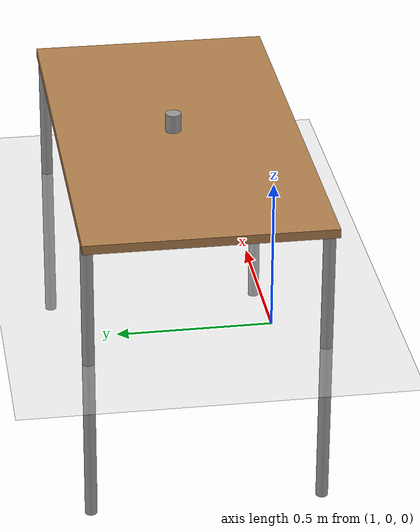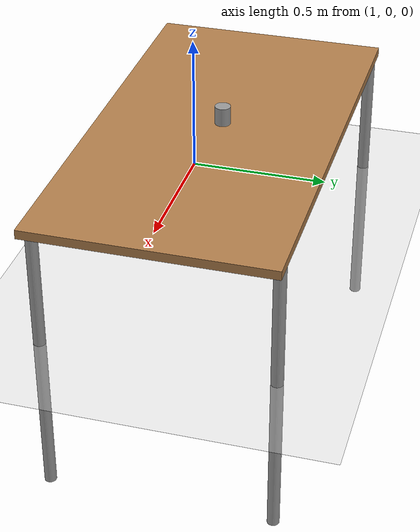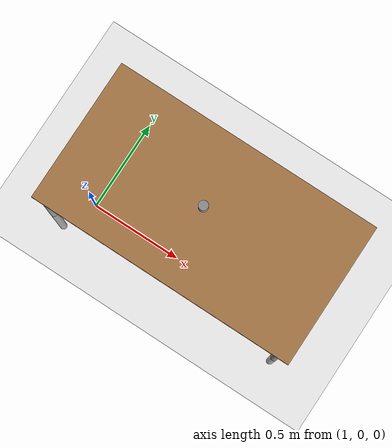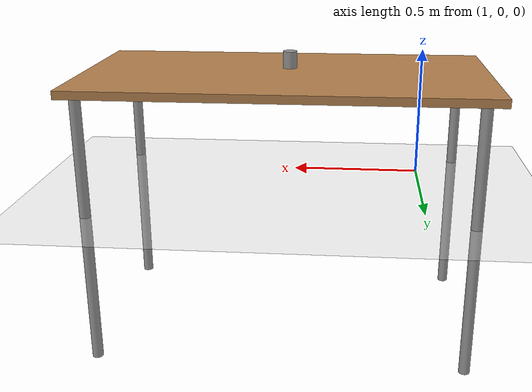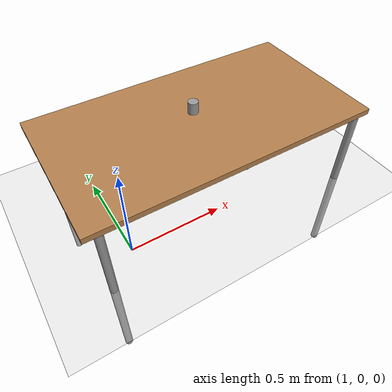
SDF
<sdf version="1.6">
 <world name="default">
  <light name="sun" type="directional">
   <pose>0 0 10 0 -0 0</pose>
   <diffuse>0.8 0.8 0.8 1</diffuse>
   <specular>0.2 0.2 0.2 1</specular>
   <attenuation>
    <range>1000</range>
    <constant>0.9</constant>
    <linear>0.01</linear>
    <quadratic>0.001</quadratic>
   </attenuation>
   <direction>-0.5 0.1 -0.9</direction>
  </light>
  <physics default="true" type="ode">
   <ode><constraints><contact_surface_layer>0.001</contact_surface_layer></constraints></ode>
  </physics>
  <model name="ground_plane">
   <static>1</static>
   <link name="link">
    <collision name="collision">
     <geometry><plane><normal>0 0 1</normal><size>100 100</size></plane></geometry>
     <surface><friction><ode><mu>100</mu><mu2>50</mu2></ode></friction></surface>
    </collision>
    <visual name="visual">
     <cast_shadows>0</cast_shadows>
     <geometry><plane><normal>0 0 1</normal><size>100 100</size></plane></geometry>
     <material>
      <script><uri>file://media/materials/scripts/gazebo.material</uri><name>Gazebo/Grey</name></script>
     </material>
    </visual>
   </link>
  </model>
  <gravity>0 0 -9.8</gravity>
  <magnetic_field>6e-06 2.3e-05 -4.2e-05</magnetic_field>
  <atmosphere type="adiabatic"/>
  <physics name="default_physics" default="0" type="ode">
   <max_step_size>0.001</max_step_size>
   <real_time_factor>1</real_time_factor>
   <real_time_update_rate>1000</real_time_update_rate>
  </physics>
  <scene><ambient>0.4 0.4 0.4 1</ambient><background>0.7 0.7 0.7 1</background><shadows>1</shadows></scene>
  <spherical_coordinates>
   <surface_model>EARTH_WGS84</surface_model>
   <latitude_deg>0</latitude_deg>
   <longitude_deg>0</longitude_deg>
   <elevation>0</elevation>
   <heading_deg>0</heading_deg>
  </spherical_coordinates>
  <model name="table">
   <static>1</static>
   <link name="link">
    <collision name="surface">
     <pose>0 0 1 0 -0 0</pose>
     <geometry><box><size>1.5 0.8 0.03</size></box></geometry>
     <surface><friction><ode><mu>0.6</mu><mu2>0.6</mu2></ode></friction></surface>
    </collision>
    <visual name="visual1">
     <pose>0 0 1 0 -0 0</pose>
     <geometry><box><size>1.5 0.8 0.03</size></box></geometry>
     <material>
      <script><uri>file://media/materials/scripts/gazebo.material</uri><name>Gazebo/Wood</name></script>
     </material>
    </visual>
    <collision name="front_left_leg">
     <pose>0.68 0.38 0.5 0 -0 0</pose>
     <geometry><cylinder><radius>0.02</radius><length>1</length></cylinder></geometry>
    </collision>
    <visual name="front_left_leg">
     <pose>0.68 0.38 0.5 0 -0 0</pose>
     <geometry><cylinder><radius>0.02</radius><length>1</length></cylinder></geometry>
     <material>
      <script><uri>file://media/materials/scripts/gazebo.material</uri><name>Gazebo/Grey</name></script>
     </material>
    </visual>
    <collision name="front_right_leg">
     <pose>0.68 -0.38 0.5 0 -0 0</pose>
     <geometry><cylinder><radius>0.02</radius><length>1</length></cylinder></geometry>
    </collision>
    <visual name="front_right_leg">
     <pose>0.68 -0.38 0.5 0 -0 0</pose>
     <geometry><cylinder><radius>0.02</radius><length>1</length></cylinder></geometry>
     <material>
      <script><uri>file://media/materials/scripts/gazebo.material</uri><name>Gazebo/Grey</name></script>
     </material>
    </visual>
    <collision name="back_right_leg">
     <pose>-0.68 -0.38 0.5 0 -0 0</pose>
     <geometry><cylinder><radius>0.02</radius><length>1</length></cylinder></geometry>
    </collision>
    <visual name="back_right_leg">
     <pose>-0.68 -0.38 0.5 0 -0 0</pose>
     <geometry><cylinder><radius>0.02</radius><length>1</length></cylinder></geometry>
     <material>
      <script><uri>file://media/materials/scripts/gazebo.material</uri><name>Gazebo/Grey</name></script>
     </material>
    </visual>
    <collision name="back_left_leg">
     <pose>-0.68 0.38 0.5 0 -0 0</pose>
     <geometry><cylinder><radius>0.02</radius><length>1</length></cylinder></geometry>
    </collision>
    <visual name="back_left_leg">
     <pose>-0.68 0.38 0.5 0 -0 0</pose>
     <geometry><cylinder><radius>0.02</radius><length>1</length></cylinder></geometry>
     <material>
      <script><uri>file://media/materials/scripts/gazebo.material</uri><name>Gazebo/Grey</name></script>
     </material>
    </visual>
   </link>
   <pose>1.51773 0.230266 -0.563206 0 -0 0</pose>
  </model>
  <model name="unit_cylinder">
   <pose>1.50233 0.248338 0.5 0 -0 0</pose>
   <link name="link">
    <inertial>
     <mass>1</mass>
     <inertia><ixx>0.145833</ixx><ixy>0</ixy><ixz>0</ixz><iyy>0.145833</iyy><iyz>0</iyz><izz>0.125</izz></inertia>
    </inertial>
    <collision name="collision">
     <geometry><cylinder><radius>0.026045</radius><length>0.06177</length></cylinder></geometry>
     <surface>
      <contact>
       <ode><max_vel>0.1</max_vel><soft_cfm>0.8</soft_cfm><soft_erp>0.8</soft_erp><kd>2500</kd><kp>10000</kp></ode>
      </contact>
      <friction><torsional><coefficient>1</coefficient></torsional><ode><mu>1</mu><mu2>1</mu2></ode></friction>
     </surface>
    </collision>
    <visual name="visual">
     <geometry><cylinder><radius>0.026045</radius><length>0.06177</length></cylinder></geometry>
     <material>
      <script><name>Gazebo/Grey</name><uri>file://media/materials/scripts/gazebo.material</uri></script>
     </material>
    </visual>
   </link>
  </model>
 </world>
</sdf>
